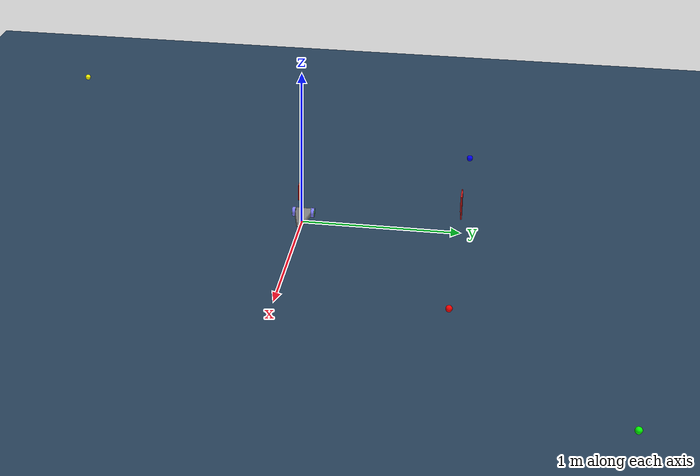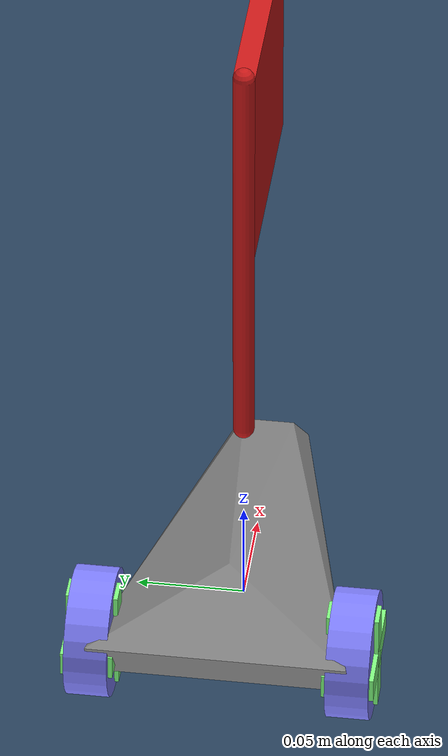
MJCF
<mujoco>
  <compiler autolimits="true" />

  <asset>

    <texture name="grid" type="2d" builtin="checker" width="512" height="512" rgb1=".1 .2 .3" rgb2=".2 .3 .4" />

    <material name="grid" texture="grid" texrepeat="1 1" texuniform="true" reflectance=".2" />

    <mesh name="chasis" scale=".01 .006 .0015" vertex=" 9   2   0               -10  10  10                9  -2   0                10  3  -10                10 -3  -10               -8   10 -10               -10 -10  10               -8  -10 -10               -5   0   20" />
  </asset>

  <default>

    <joint damping=".03" actuatorfrcrange="-0.5 0.5" />

    <default class="wheel">
      <geom type="cylinder" size=".03 .01" rgba=".5 .5 1 1" />
    </default>

    <default class="decor">
      <site type="box" rgba=".5 1 .5 1" />
    </default>
  </default>

  <worldbody>

    <geom type="plane" size="5 5 .01" material="grid" />

    <body name="car" pos="0 0 .03">

      <freejoint />

      <light name="top light" pos="0 0 2" mode="trackcom" diffuse=".4 .4 .4" />

      <geom name="chasis" type="mesh" mesh="chasis" />

      <geom name="front wheel" pos=".08 0 -.015" type="sphere" size=".015" condim="1" priority="1" />

      <light name="front light" pos=".1 0 .02" dir="2 0 -1" diffuse="1 1 1" />

      <body name="left wheel" pos="-.07 .06 0" zaxis="0 1 0">
        <joint name="left" />
        <geom class="wheel" />
        <site class="decor" size=".006 .025 .012" />
        <site class="decor" size=".025 .006 .012" />
      </body>

      <body name="right wheel" pos="-.07 -.06 0" zaxis="0 1 0">
        <joint name="right" />
        <geom class="wheel" />
        <site class="decor" size=".006 .025 .012" />
        <site class="decor" size=".025 .006 .012" />
      </body>
    </body>

    <site name="landmark1" pos="1 1 0.05" size="0.02" rgba="1 0 0 1" />
    <site name="landmark2" pos="2 2 0.05" size="0.02" rgba="0 1 0 1" />
    <site name="landmark3" pos="-1 1 0.05" size="0.02" rgba="0 0 1 1" />
    <site name="landmark4" pos="-2 -2 0.05" size="0.02" rgba="1 1 0 1" />

    <body name="start_flag" pos="0 0 0.2">

      <geom type="capsule" size="0.005 0.1" material="flag_mat" rgba="0.8 0.1 0.1 1" />

      <geom type="box" size="0.05 0.005 0.05" pos="0.05 0 0.05" material="flag_mat" rgba="0.8 0.1 0.1 1" group="1" />
    </body>

    <body name="end_flag" pos="0 1 0.2">

      <geom type="capsule" size="0.005 0.1" material="flag_mat" rgba="0.8 0.1 0.1 1" />

      <geom type="box" size="0.05 0.005 0.05" pos="0.05 0 0.05" material="flag_mat" rgba="0.8 0.1 0.1 1" group="1" />
    </body>

  </worldbody>

  <asset>
        <material name="ground_mat" rgba="0.1 0.5 0.1 1" />
        <material name="flag_mat" rgba="0.8 0.1 0.1 1" />
  </asset>

  <tendon>
    <fixed name="forward">
      <joint joint="left" coef=".5" />
      <joint joint="right" coef=".5" />
    </fixed>
    <fixed name="turn">
      <joint joint="left" coef="-.5" />
      <joint joint="right" coef=".5" />
    </fixed>
  </tendon>

  <actuator>
    <motor name="forward" tendon="forward" ctrlrange="-1 1" />
    <motor name="turn" tendon="turn" ctrlrange="-1 1" />
  </actuator>

  <sensor>
    <jointactuatorfrc name="right" joint="right" />
    <jointactuatorfrc name="left" joint="left" />
  </sensor>
</mujoco>
